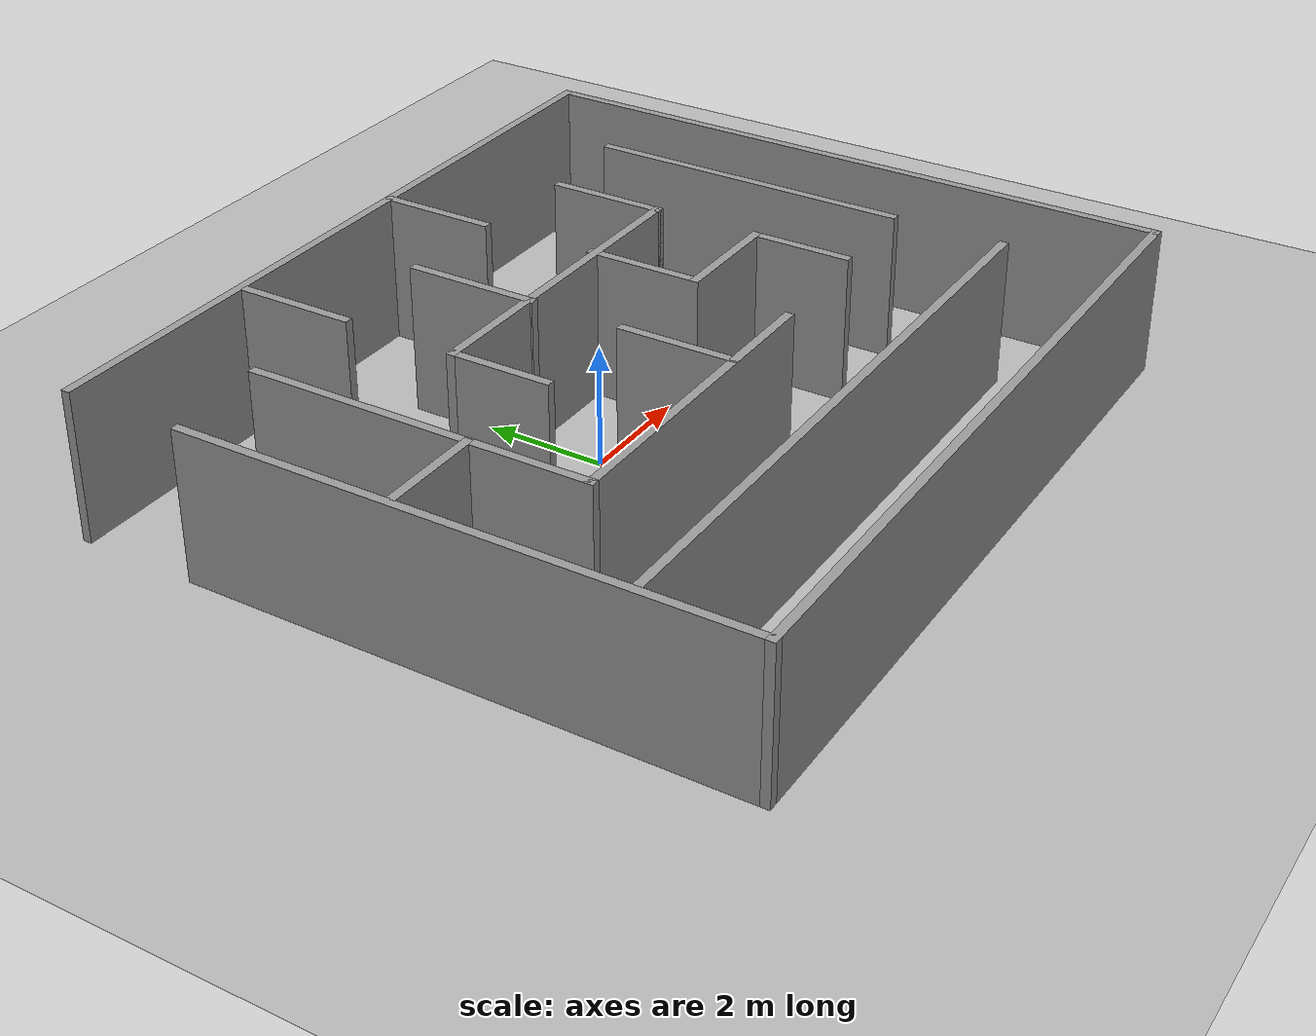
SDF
<?xml version="1.0" ?>
<sdf version="1.5">
  <world name="default">
    <physics name="default_physics" default="0" type="ode">
      <gravity>0 0 -9.8066</gravity>
      <ode>
        <solver>
          <type>quick</type>
          <iters>10</iters>
          <sor>1.3</sor>
          <use_dynamic_moi_rescaling>0</use_dynamic_moi_rescaling>
        </solver>
        <constraints>z
          <cfm>0</cfm>
          <erp>0.2</erp>
          <contact_max_correcting_vel>1000</contact_max_correcting_vel>
          <contact_surface_layer>0.001</contact_surface_layer>
        </constraints>
      </ode>
      <max_step_size>0.004</max_step_size>
      <real_time_factor>1</real_time_factor>
      <real_time_update_rate>250</real_time_update_rate>
      <magnetic_field>6.0e-06 2.3e-05 -4.2e-05</magnetic_field>
    </physics>
    <scene>
      <shadows>false</shadows>
      <sky>
        <clouds>
          <speed>12</speed>
        </clouds>
      </sky>
    </scene>
     <light type="directional" name="sun">
      <cast_shadows>true</cast_shadows>
      <pose>250 250 600 0 0 0</pose>
      <diffuse>0.8 0.8 0.8 1</diffuse>
      <specular>0.2 0.2 0.2 1</specular>
      <attenuation>
        <range>1000</range>
        <constant>0.9</constant>
        <linear>0.01</linear>
        <quadratic>0.001</quadratic>
      </attenuation>
      <direction>0 0 -1</direction>
    </light>
    <model name="ground_plane">
      <static>true</static>
      <link name="link">
        <collision name="collision">
          <pose>0 0 0 0 0 0</pose>
          <geometry>
            <plane>
              <normal>0 0 1</normal>
              <size>250 250</size>
            </plane>
          </geometry>
          <surface>
            <friction>
              <ode>
                <mu>1</mu>
                <mu2>1</mu2>
              </ode>
            </friction>
          </surface>
        </collision>
        <visual name="grass">
          <pose>0 0 0 0 0 0</pose>
          <cast_shadows>false</cast_shadows>
          <geometry>
            <mesh>
              <uri>file://grass_plane/meshes/grass_plane.dae</uri>
            </mesh>
          </geometry>
        </visual>
      </link>
    </model>
    <include>
      <uri>model://maze</uri>
    </include>
  </world>
</sdf>

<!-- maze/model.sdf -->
<sdf version='1.7'>
  <model name='maze'>
    <pose>0.736927 -0.393909 0 0 -0 0</pose>
    <link name='Wall_1'>
      <collision name='Wall_1_Collision'>
        <geometry>
          <box>
            <size>12.75 0.15 2.5</size>
          </box>
        </geometry>
        <pose>0 0 1.25 0 -0 0</pose>
      </collision>
      <visual name='Wall_1_Visual'>
        <pose>0 0 1.25 0 -0 0</pose>
        <geometry>
          <box>
            <size>12.75 0.15 2.5</size>
          </box>
        </geometry>
        <material>
          <script>
            <uri>file://media/materials/scripts/gazebo.material</uri>
            <name>Gazebo/Grey</name>
          </script>
          <ambient>1 1 1 1</ambient>
        </material>
        <meta>
          <layer>0</layer>
        </meta>
      </visual>
      <pose>0 5.55 0 0 -0 0</pose>
    </link>
    <link name='Wall_10'>
      <collision name='Wall_10_Collision'>
        <geometry>
          <box>
            <size>5.75 0.15 2.5</size>
          </box>
        </geometry>
        <pose>0 0 1.25 0 -0 0</pose>
      </collision>
      <visual name='Wall_10_Visual'>
        <pose>0 0 1.25 0 -0 0</pose>
        <geometry>
          <box>
            <size>5.75 0.15 2.5</size>
          </box>
        </geometry>
        <material>
          <script>
            <uri>file://media/materials/scripts/gazebo.material</uri>
            <name>Gazebo/Grey</name>
          </script>
          <ambient>1 1 1 1</ambient>
        </material>
        <meta>
          <layer>0</layer>
        </meta>
      </visual>
      <pose>-4.54439 0.887986 0 0 -0 -1.5708</pose>
    </link>
    <link name='Wall_11'>
      <collision name='Wall_11_Collision'>
        <geometry>
          <box>
            <size>5.5 0.15 2.5</size>
          </box>
        </geometry>
        <pose>0 0 1.25 0 -0 0</pose>
      </collision>
      <visual name='Wall_11_Visual'>
        <pose>0 0 1.25 0 -0 0</pose>
        <geometry>
          <box>
            <size>5.5 0.15 2.5</size>
          </box>
        </geometry>
        <material>
          <script>
            <uri>file://media/materials/scripts/gazebo.material</uri>
            <name>Gazebo/Grey</name>
          </script>
          <ambient>1 1 1 1</ambient>
        </material>
        <meta>
          <layer>0</layer>
        </meta>
      </visual>
      <pose>-1.86939 -1.91201 0 0 -0 0</pose>
    </link>
    <link name='Wall_13'>
      <collision name='Wall_13_Collision'>
        <geometry>
          <box>
            <size>2 0.15 2.5</size>
          </box>
        </geometry>
        <pose>0 0 1.25 0 -0 0</pose>
      </collision>
      <visual name='Wall_13_Visual'>
        <pose>0 0 1.25 0 -0 0</pose>
        <geometry>
          <box>
            <size>2 0.15 2.5</size>
          </box>
        </geometry>
        <material>
          <script>
            <uri>file://media/materials/scripts/gazebo.material</uri>
            <name>Gazebo/Grey</name>
          </script>
          <ambient>1 1 1 1</ambient>
        </material>
        <meta>
          <layer>0</layer>
        </meta>
      </visual>
      <pose>-0.767159 -0.973055 0 0 -0 1.5708</pose>
    </link>
    <link name='Wall_15'>
      <collision name='Wall_15_Collision'>
        <geometry>
          <box>
            <size>1.75 0.15 2.5</size>
          </box>
        </geometry>
        <pose>0 0 1.25 0 -0 0</pose>
      </collision>
      <visual name='Wall_15_Visual'>
        <pose>0 0 1.25 0 -0 0</pose>
        <geometry>
          <box>
            <size>1.75 0.15 2.5</size>
          </box>
        </geometry>
        <material>
          <script>
            <uri>file://media/materials/scripts/gazebo.material</uri>
            <name>Gazebo/Grey</name>
          </script>
          <ambient>1 1 1 1</ambient>
        </material>
        <meta>
          <layer>0</layer>
        </meta>
      </visual>
      <pose>-2.68237 0.817159 0 0 -0 1.5708</pose>
    </link>
    <link name='Wall_16'>
      <collision name='Wall_16_Collision'>
        <geometry>
          <box>
            <size>5.75 0.15 2.5</size>
          </box>
        </geometry>
        <pose>0 0 1.25 0 -0 0</pose>
      </collision>
      <visual name='Wall_16_Visual'>
        <pose>0 0 1.25 0 -0 0</pose>
        <geometry>
          <box>
            <size>5.75 0.15 2.5</size>
          </box>
        </geometry>
        <material>
          <script>
            <uri>file://media/materials/scripts/gazebo.material</uri>
            <name>Gazebo/Grey</name>
          </script>
          <ambient>1 1 1 1</ambient>
        </material>
        <meta>
          <layer>0</layer>
        </meta>
      </visual>
      <pose>0.117627 1.61716 0 0 -0 0</pose>
    </link>
    <link name='Wall_17'>
      <collision name='Wall_17_Collision'>
        <geometry>
          <box>
            <size>2 0.15 2.5</size>
          </box>
        </geometry>
        <pose>0 0 1.25 0 -0 0</pose>
      </collision>
      <visual name='Wall_17_Visual'>
        <pose>0 0 1.25 0 -0 0</pose>
        <geometry>
          <box>
            <size>2 0.15 2.5</size>
          </box>
        </geometry>
        <material>
          <script>
            <uri>file://media/materials/scripts/gazebo.material</uri>
            <name>Gazebo/Grey</name>
          </script>
          <ambient>1 1 1 1</ambient>
        </material>
        <meta>
          <layer>0</layer>
        </meta>
      </visual>
      <pose>2.91763 2.54216 0 0 -0 1.5708</pose>
    </link>
    <link name='Wall_19'>
      <collision name='Wall_19_Collision'>
        <geometry>
          <box>
            <size>2.25 0.15 2.5</size>
          </box>
        </geometry>
        <pose>0 0 1.25 0 -0 0</pose>
      </collision>
      <visual name='Wall_19_Visual'>
        <pose>0 0 1.25 0 -0 0</pose>
        <geometry>
          <box>
            <size>2.25 0.15 2.5</size>
          </box>
        </geometry>
        <material>
          <script>
            <uri>file://media/materials/scripts/gazebo.material</uri>
            <name>Gazebo/Grey</name>
          </script>
          <ambient>1 1 1 1</ambient>
        </material>
        <meta>
          <layer>0</layer>
        </meta>
      </visual>
      <pose>-0.767159 2.63657 0 0 -0 1.5708</pose>
    </link>
    <link name='Wall_2'>
      <collision name='Wall_2_Collision'>
        <geometry>
          <box>
            <size>11.25 0.15 2.5</size>
          </box>
        </geometry>
        <pose>0 0 1.25 0 -0 0</pose>
      </collision>
      <visual name='Wall_2_Visual'>
        <pose>0 0 1.25 0 -0 0</pose>
        <geometry>
          <box>
            <size>11.25 0.15 2.5</size>
          </box>
        </geometry>
        <material>
          <script>
            <uri>file://media/materials/scripts/gazebo.material</uri>
            <name>Gazebo/Grey</name>
          </script>
          <ambient>1 1 1 1</ambient>
        </material>
        <meta>
          <layer>0</layer>
        </meta>
      </visual>
      <pose>6.3 0 0 0 -0 -1.5708</pose>
    </link>
    <link name='Wall_21'>
      <collision name='Wall_21_Collision'>
        <geometry>
          <box>
            <size>2 0.15 2.5</size>
          </box>
        </geometry>
        <pose>0 0 1.25 0 -0 0</pose>
      </collision>
      <visual name='Wall_21_Visual'>
        <pose>0 0 1.25 0 -0 0</pose>
        <geometry>
          <box>
            <size>2 0.15 2.5</size>
          </box>
        </geometry>
        <material>
          <script>
            <uri>file://media/materials/scripts/gazebo.material</uri>
            <name>Gazebo/Grey</name>
          </script>
          <ambient>1 1 1 1</ambient>
        </material>
        <meta>
          <layer>0</layer>
        </meta>
      </visual>
      <pose>1.09485 0.741371 0 0 -0 -1.5708</pose>
    </link>
    <link name='Wall_22'>
      <collision name='Wall_22_Collision'>
        <geometry>
          <box>
            <size>2 0.15 2.5</size>
          </box>
        </geometry>
        <pose>0 0 1.25 0 -0 0</pose>
      </collision>
      <visual name='Wall_22_Visual'>
        <pose>0 0 1.25 0 -0 0</pose>
        <geometry>
          <box>
            <size>2 0.15 2.5</size>
          </box>
        </geometry>
        <material>
          <script>
            <uri>file://media/materials/scripts/gazebo.material</uri>
            <name>Gazebo/Grey</name>
          </script>
          <ambient>1 1 1 1</ambient>
        </material>
        <meta>
          <layer>0</layer>
        </meta>
      </visual>
      <pose>2.01986 -0.183629 0 0 -0 0</pose>
    </link>
    <link name='Wall_23'>
      <collision name='Wall_23_Collision'>
        <geometry>
          <box>
            <size>1.75 0.15 2.5</size>
          </box>
        </geometry>
        <pose>0 0 1.25 0 -0 0</pose>
      </collision>
      <visual name='Wall_23_Visual'>
        <pose>0 0 1.25 0 -0 0</pose>
        <geometry>
          <box>
            <size>1.75 0.15 2.5</size>
          </box>
        </geometry>
        <material>
          <script>
            <uri>file://media/materials/scripts/gazebo.material</uri>
            <name>Gazebo/Grey</name>
          </script>
          <ambient>1 1 1 1</ambient>
        </material>
        <meta>
          <layer>0</layer>
        </meta>
      </visual>
      <pose>2.94486 -0.983629 0 0 -0 -1.5708</pose>
    </link>
    <link name='Wall_25'>
      <collision name='Wall_25_Collision'>
        <geometry>
          <box>
            <size>11 0.15 2.5</size>
          </box>
        </geometry>
        <pose>0 0 1.25 0 -0 0</pose>
      </collision>
      <visual name='Wall_25_Visual'>
        <pose>0 0 1.25 0 -0 0</pose>
        <geometry>
          <box>
            <size>11 0.15 2.5</size>
          </box>
        </geometry>
        <material>
          <script>
            <uri>file://media/materials/scripts/gazebo.material</uri>
            <name>Gazebo/Grey</name>
          </script>
          <ambient>1 1 1 1</ambient>
        </material>
        <meta>
          <layer>0</layer>
        </meta>
      </visual>
      <pose>-0.768599 -3.65367 0 0 -0 0</pose>
    </link>
    <link name='Wall_27'>
      <collision name='Wall_27_Collision'>
        <geometry>
          <box>
            <size>1.75 0.15 2.5</size>
          </box>
        </geometry>
        <pose>0 0 1.25 0 -0 0</pose>
      </collision>
      <visual name='Wall_27_Visual'>
        <pose>0 0 1.25 0 -0 0</pose>
        <geometry>
          <box>
            <size>1.75 0.15 2.5</size>
          </box>
        </geometry>
        <material>
          <script>
            <uri>file://media/materials/scripts/gazebo.material</uri>
            <name>Gazebo/Grey</name>
          </script>
          <ambient>1 1 1 1</ambient>
        </material>
        <meta>
          <layer>0</layer>
        </meta>
      </visual>
      <pose>-5.367 0.043759 0 0 -0 0</pose>
    </link>
    <link name='Wall_29'>
      <collision name='Wall_29_Collision'>
        <geometry>
          <box>
            <size>5.5 0.15 2.5</size>
          </box>
        </geometry>
        <pose>0 0 1.25 0 -0 0</pose>
      </collision>
      <visual name='Wall_29_Visual'>
        <pose>0 0 1.25 0 -0 0</pose>
        <geometry>
          <box>
            <size>5.5 0.15 2.5</size>
          </box>
        </geometry>
        <material>
          <script>
            <uri>file://media/materials/scripts/gazebo.material</uri>
            <name>Gazebo/Grey</name>
          </script>
          <ambient>1 1 1 1</ambient>
        </material>
        <meta>
          <layer>0</layer>
        </meta>
      </visual>
      <pose>4.65928 0.936546 0 0 -0 1.5708</pose>
    </link>
    <link name='Wall_3'>
      <collision name='Wall_3_Collision'>
        <geometry>
          <box>
            <size>12.75 0.15 2.5</size>
          </box>
        </geometry>
        <pose>0 0 1.25 0 -0 0</pose>
      </collision>
      <visual name='Wall_3_Visual'>
        <pose>0 0 1.25 0 -0 0</pose>
        <geometry>
          <box>
            <size>12.75 0.15 2.5</size>
          </box>
        </geometry>
        <material>
          <script>
            <uri>file://media/materials/scripts/gazebo.material</uri>
            <name>Gazebo/Grey</name>
          </script>
          <ambient>1 1 1 1</ambient>
        </material>
        <meta>
          <layer>0</layer>
        </meta>
      </visual>
      <pose>0 -5.55 0 0 -0 3.14159</pose>
    </link>
    <link name='Wall_4'>
      <collision name='Wall_4_Collision'>
        <geometry>
          <box>
            <size>9.25 0.15 2.5</size>
          </box>
        </geometry>
        <pose>0 0 1.25 0 -0 0</pose>
      </collision>
      <visual name='Wall_4_Visual'>
        <pose>0 0 1.25 0 -0 0</pose>
        <geometry>
          <box>
            <size>9.25 0.15 2.5</size>
          </box>
        </geometry>
        <material>
          <script>
            <uri>file://media/materials/scripts/gazebo.material</uri>
            <name>Gazebo/Grey</name>
          </script>
          <ambient>1 1 1 1</ambient>
        </material>
        <meta>
          <layer>0</layer>
        </meta>
      </visual>
      <pose>-6.3 -1 0 0 -0 1.5708</pose>
    </link>
    <link name='Wall_6'>
      <collision name='Wall_6_Collision'>
        <geometry>
          <box>
            <size>2 0.15 2.5</size>
          </box>
        </geometry>
        <pose>0 0 1.25 0 -0 0</pose>
      </collision>
      <visual name='Wall_6_Visual'>
        <pose>0 0 1.25 0 -0 0</pose>
        <geometry>
          <box>
            <size>2 0.15 2.5</size>
          </box>
        </geometry>
        <material>
          <script>
            <uri>file://media/materials/scripts/gazebo.material</uri>
            <name>Gazebo/Grey</name>
          </script>
          <ambient>1 1 1 1</ambient>
        </material>
        <meta>
          <layer>0</layer>
        </meta>
      </visual>
      <pose>-2.68237 4.492 0 0 -0 -1.5708</pose>
    </link>
    <link name='Wall_8'>
      <collision name='Wall_8_Collision'>
        <geometry>
          <box>
            <size>2 0.15 2.5</size>
          </box>
        </geometry>
        <pose>0 0 1.25 0 -0 0</pose>
      </collision>
      <visual name='Wall_8_Visual'>
        <pose>0 0 1.25 0 -0 0</pose>
        <geometry>
          <box>
            <size>2 0.15 2.5</size>
          </box>
        </geometry>
        <material>
          <script>
            <uri>file://media/materials/scripts/gazebo.material</uri>
            <name>Gazebo/Grey</name>
          </script>
          <ambient>1 1 1 1</ambient>
        </material>
        <meta>
          <layer>0</layer>
        </meta>
      </visual>
      <pose>1.01506 4.5984 0 0 -0 -1.5708</pose>
    </link>
    <static>1</static>
  </model>
</sdf>
